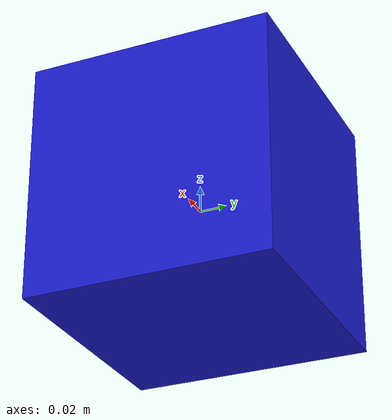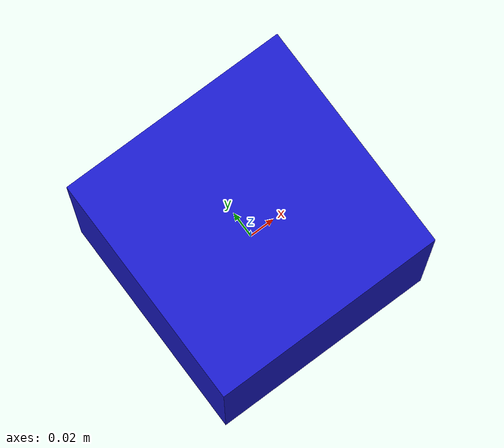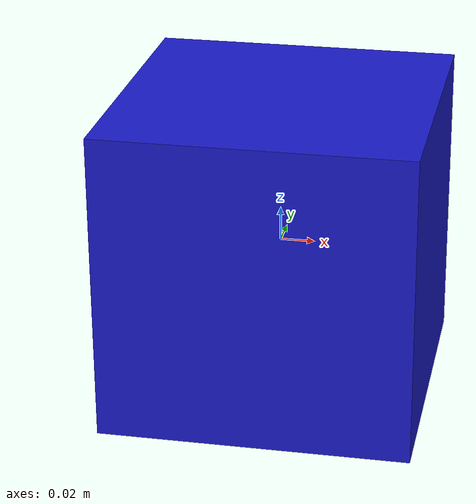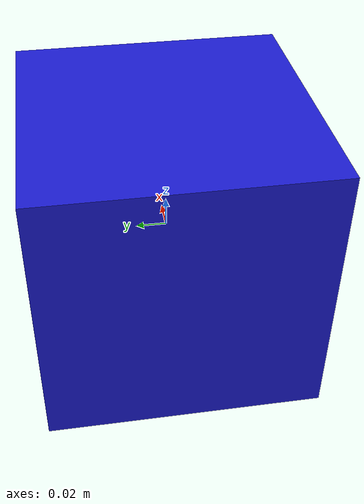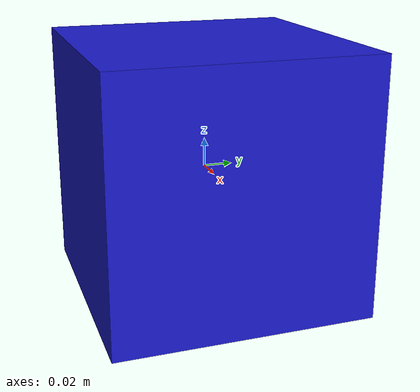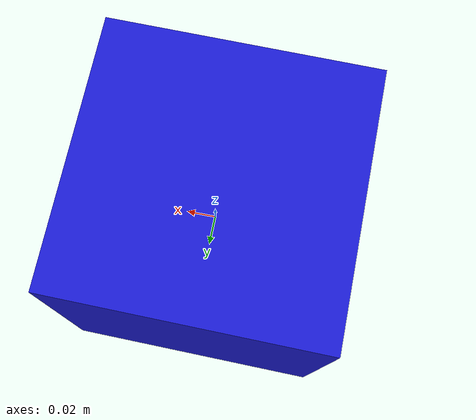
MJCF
<mujoco model="red block">
    <compiler angle="radian" autolimits="true" />
    <option impratio="10" />
    <custom>
        <text name="semantic_class" data="block" />
    </custom>
    <default>
        <default class="visual">
            <geom contype="0" conaffinity="0" group="2" />
        </default>
        <default class="collision">
            <geom group="3" />
        </default>
    </default>

    <worldbody>
        <body name="large block">
            <geom type="box" size="0.09 0.09 0.09" class="visual" rgba="0.1 0.1 0.8 1" />
            <geom type="box" size="0.09 0.09 0.09" class="collision" rgba="0.1 0.1 0.8 1" />
            <!-- note: if mass is too light, block can't be grasped -->
            <!-- for visualization -->
            <!-- for grasping -->

        </body>
    </worldbody>
</mujoco>
